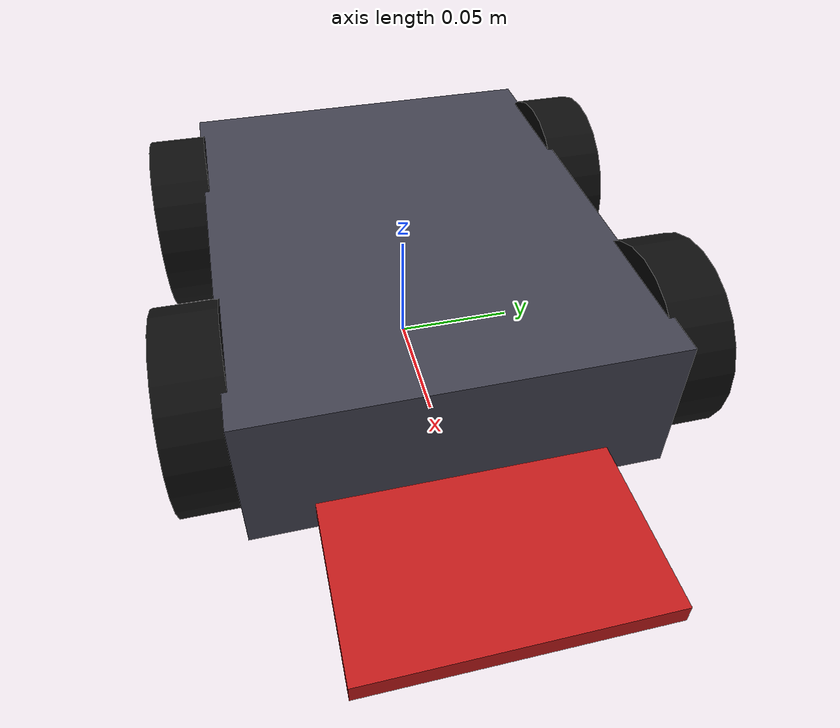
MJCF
<mujoco model="battle_bot_template">
  <asset>
    <!-- Replace with your CAD exports (STL/OBJ) -->
  </asset>

  <default>
    <default class="wheel_joint">
      <joint damping="0.35" armature="0.004"/>
    </default>
    <default class="wheel_geom">
      <geom friction="2.2 0.01 0.0005"/>
    </default>
  </default>

  <worldbody>
    <!-- Put this body under arena worldbody when not using include -->
    <body name="robot" pos="0 0 0.035">
      <freejoint/>

      <!-- Option A: quick primitive chassis for tuning -->
      <!-- 3 lb bot target mass split: chassis 0.90kg, weapon 0.34kg, wheels 0.03kg each -->
      <geom name="chassis_col" type="box" size="0.10 0.08 0.03" mass="0.70" rgba="0.25 0.25 0.3 1"/>
      <!-- Hidden low ballast to keep center of mass down and reduce tipping/floaty feel -->
      <geom name="chassis_ballast" type="box" pos="0 0 -0.02" size="0.07 0.055 0.008" mass="0.20" rgba="0 0 0 0"/>

      <!-- Option B: visual mesh + simpler collision proxy -->

      <!-- Left drive wheels -->
      <body name="wheel_front_left" pos="0.06 0.09 0">
        <joint name="wheel_front_left_joint" class="wheel_joint" type="hinge" axis="0 1 0"/>
        <geom name="wheel_front_left_col" class="wheel_geom" type="cylinder" size="0.0385 0.012" euler="90 0 0" mass="0.03" rgba="0.05 0.05 0.05 1"/>
      </body>

      <body name="wheel_rear_left" pos="-0.06 0.09 0">
        <joint name="wheel_rear_left_joint" class="wheel_joint" type="hinge" axis="0 1 0"/>
        <geom name="wheel_rear_left_col" class="wheel_geom" type="cylinder" size="0.0385 0.012" euler="90 0 0" mass="0.03" rgba="0.05 0.05 0.05 1"/>
      </body>

      <!-- Right drive wheels -->
      <body name="wheel_front_right" pos="0.06 -0.09 0">
        <joint name="wheel_front_right_joint" class="wheel_joint" type="hinge" axis="0 1 0"/>
        <geom name="wheel_front_right_col" class="wheel_geom" type="cylinder" size="0.0385 0.012" euler="90 0 0" mass="0.03" rgba="0.05 0.05 0.05 1"/>
      </body>

      <body name="wheel_rear_right" pos="-0.06 -0.09 0">
        <joint name="wheel_rear_right_joint" class="wheel_joint" type="hinge" axis="0 1 0"/>
        <geom name="wheel_rear_right_col" class="wheel_geom" type="cylinder" size="0.0385 0.012" euler="90 0 0" mass="0.03" rgba="0.05 0.05 0.05 1"/>
      </body>

      <!-- Front-bottom horizontal spinner (flat-ish square) -->
      <body name="weapon" pos="0.11 0 -0.02">
        <joint name="weapon_joint" type="hinge" axis="0 0 1"/>
        <geom name="weapon_col" type="box" size="0.055 0.055 0.004" mass="0.34" rgba="0.75 0.1 0.1 1"/>
      </body>
    </body>
  </worldbody>

  <actuator>
    <motor name="left_front_drive_motor"  joint="wheel_front_left_joint"  gear="0.9" ctrllimited="true" ctrlrange="-45 45"/>
    <motor name="left_rear_drive_motor"   joint="wheel_rear_left_joint"   gear="0.9" ctrllimited="true" ctrlrange="-45 45"/>
    <motor name="right_front_drive_motor" joint="wheel_front_right_joint" gear="0.9" ctrllimited="true" ctrlrange="-45 45"/>
    <motor name="right_rear_drive_motor"  joint="wheel_rear_right_joint"  gear="0.9" ctrllimited="true" ctrlrange="-45 45"/>
    <motor name="weapon_motor"      joint="weapon_joint"      gear="0.16" ctrllimited="true" ctrlrange="0 130"/>
  </actuator>
</mujoco>
